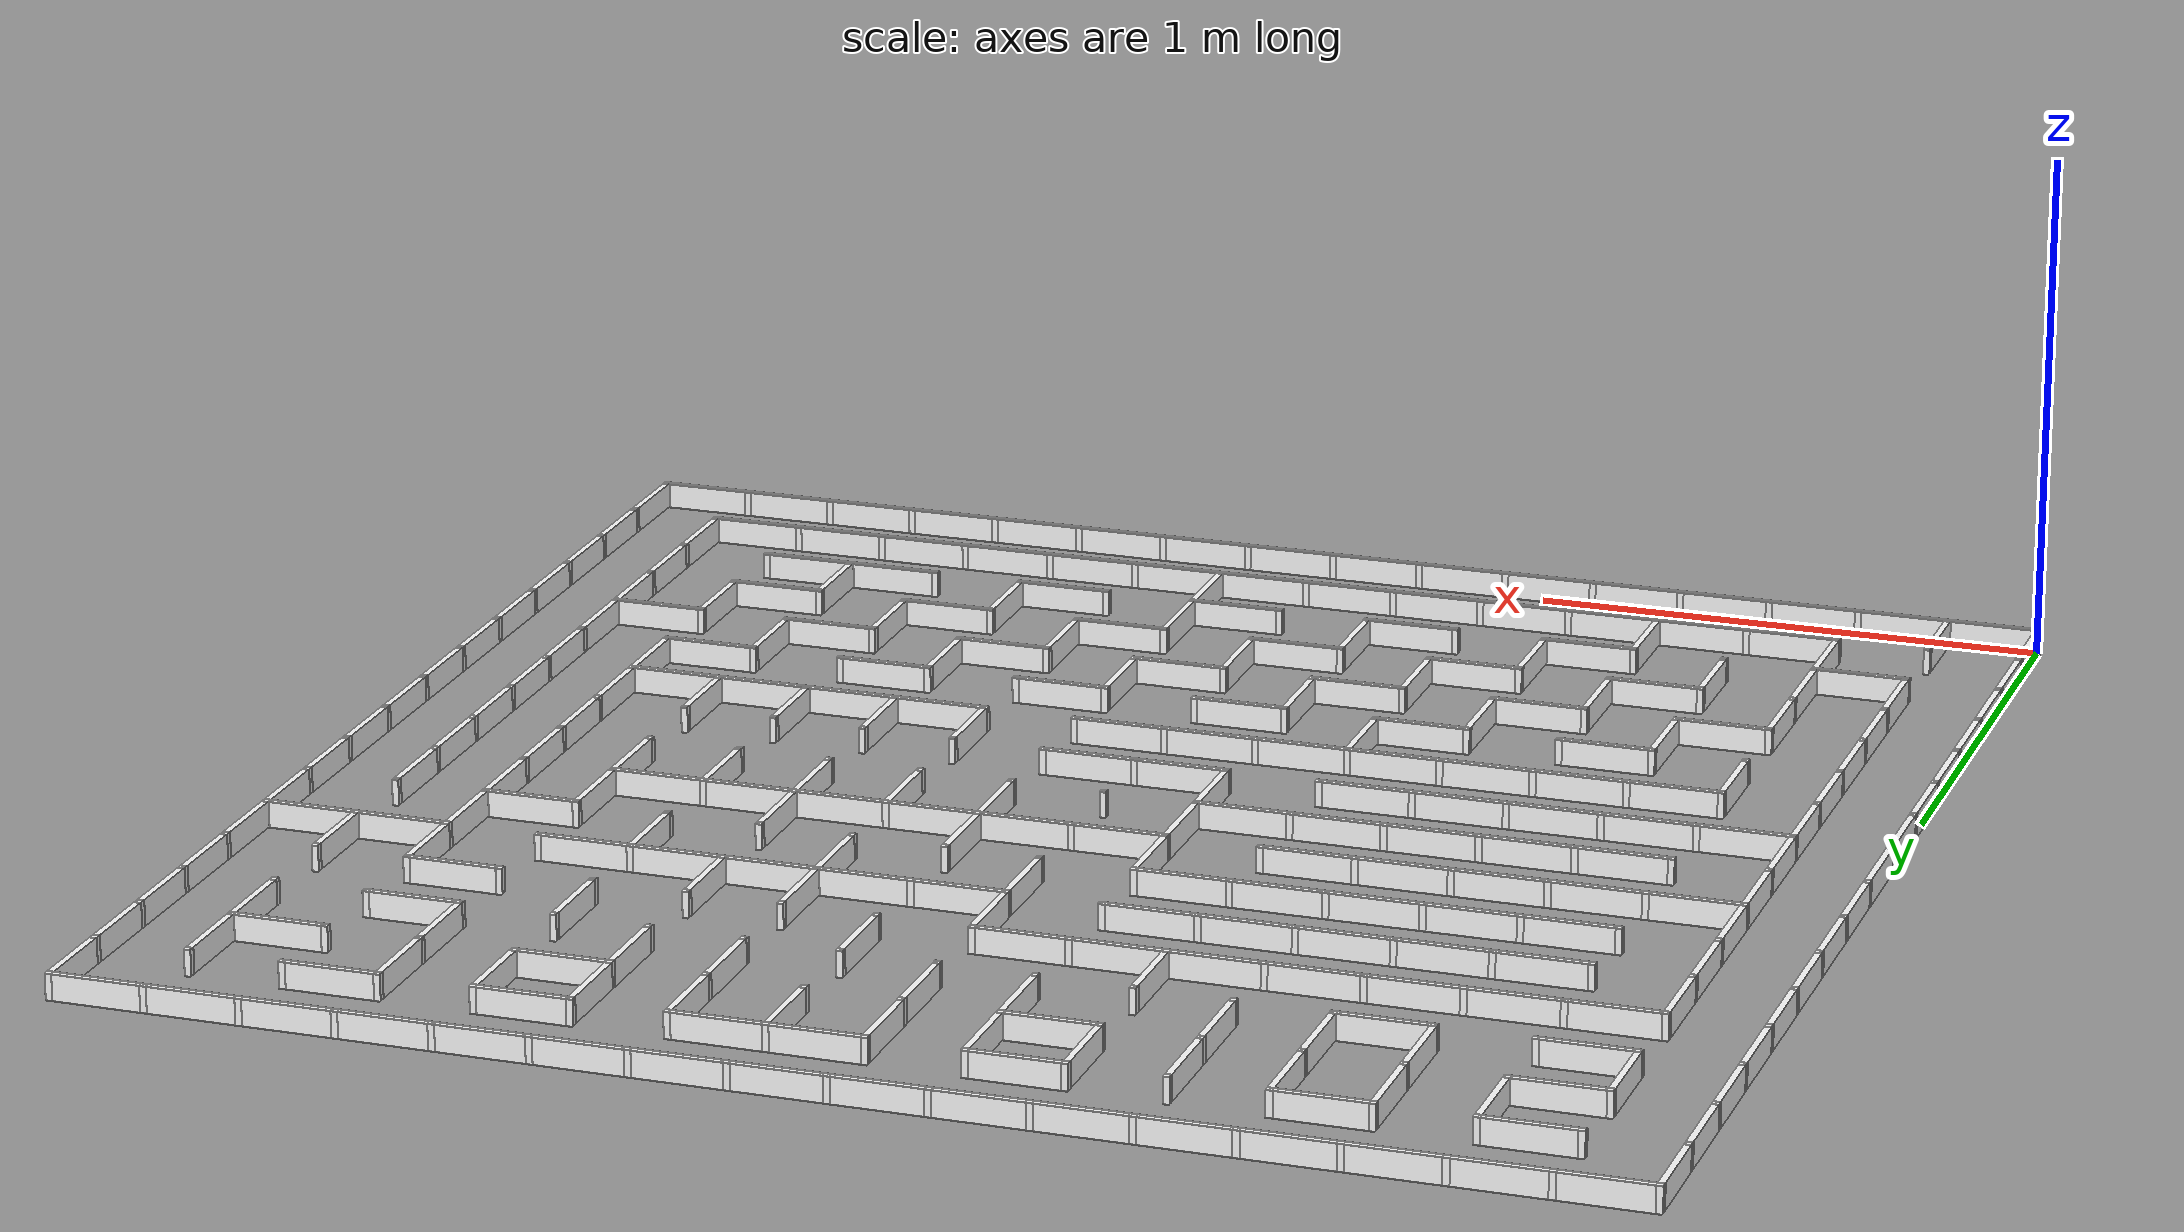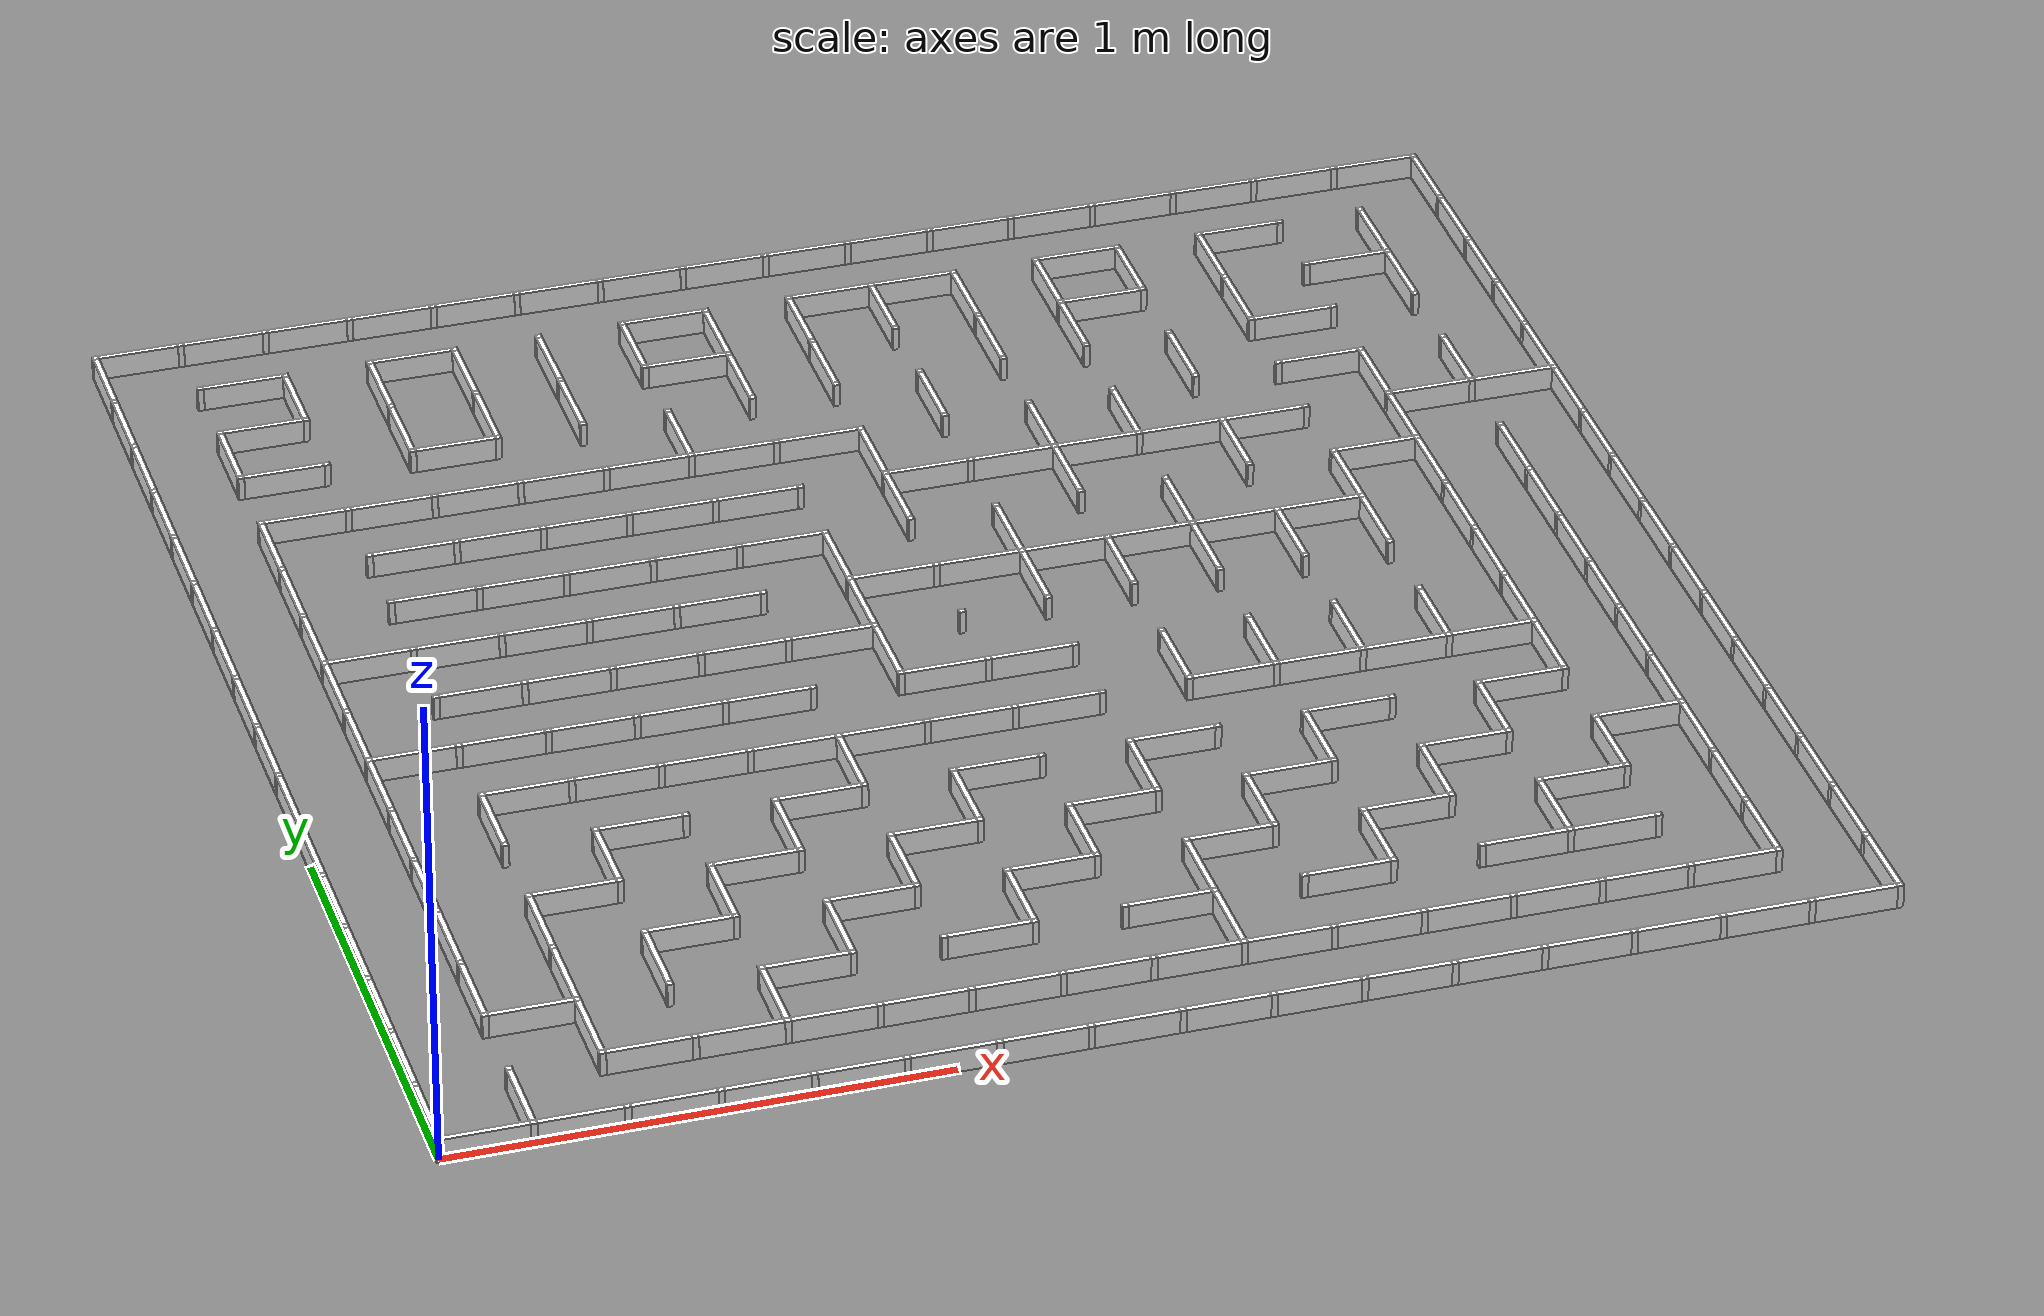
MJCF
<!-- Generated maze for MuJoCo -->
<!-- Maze dimensions: 16x16 -->
<!-- Cell size: 0.18 m, Wall thickness: 0.0126 m, Wall height: 0.05 m -->

<mujoco>
  <asset>
    <texture name="walls" type="cube" builtin="flat" width="512" height="512" rgb1="1 1 1" rgb2="1 0 0"/>
    <material name="walls" texture="walls"/>
  </asset>

  <default>
    <default class="post">
      <geom type="box" zaxis="0 1 0" material="walls" size="0.006300 0.025000 0.006300"/>
    </default>
    <default class="post_w">
      <geom type="box" zaxis="0 1 0" rgba="1 1 1 1" size="0.006300 0.025000 0.006300"/>
    </default>
    <default class="hwall">
      <geom type="box" zaxis="0 1 0" material="walls" size="0.083700 0.025000 0.006300"/>
    </default>
    <default class="hwall_w">
      <geom type="box" zaxis="0 1 0" rgba="1 1 1 1" size="0.083700 0.025000 0.006300"/>
    </default>
    <default class="vwall">
      <geom type="box" zaxis="0 1 0" material="walls" size="0.006300 0.025000 0.083700"/>
    </default>
    <default class="vwall_w">
      <geom type="box" zaxis="0 1 0" rgba="1 1 1 1" size="0.006300 0.025000 0.083700"/>
    </default>
  </default>

  <worldbody>
    <camera name="top_view" orthographic="true" fovy="3.5" pos="1.440000 1.440000 4.5" xyaxes="1.0 0.0 0.0 0.0 1.0 0.0"/>
    <geom class="post_w" name="post_0_0" pos="0.000000 0.000000 0.025000"/>
    <geom class="post_w" name="post_0_1" pos="0.180000 0.000000 0.025000"/>
    <geom class="post" name="post_0_2" pos="0.360000 0.000000 0.025000"/>
    <geom class="post" name="post_0_3" pos="0.540000 0.000000 0.025000"/>
    <geom class="post" name="post_0_4" pos="0.720000 0.000000 0.025000"/>
    <geom class="post" name="post_0_5" pos="0.900000 0.000000 0.025000"/>
    <geom class="post" name="post_0_6" pos="1.080000 0.000000 0.025000"/>
    <geom class="post" name="post_0_7" pos="1.260000 0.000000 0.025000"/>
    <geom class="post" name="post_0_8" pos="1.440000 0.000000 0.025000"/>
    <geom class="post" name="post_0_9" pos="1.620000 0.000000 0.025000"/>
    <geom class="post" name="post_0_10" pos="1.800000 0.000000 0.025000"/>
    <geom class="post" name="post_0_11" pos="1.980000 0.000000 0.025000"/>
    <geom class="post" name="post_0_12" pos="2.160000 0.000000 0.025000"/>
    <geom class="post" name="post_0_13" pos="2.340000 0.000000 0.025000"/>
    <geom class="post" name="post_0_14" pos="2.520000 0.000000 0.025000"/>
    <geom class="post" name="post_0_15" pos="2.700000 0.000000 0.025000"/>
    <geom class="post" name="post_0_16" pos="2.880000 0.000000 0.025000"/>
    <geom class="post_w" name="post_1_0" pos="0.000000 0.180000 0.025000"/>
    <geom class="post_w" name="post_1_1" pos="0.180000 0.180000 0.025000"/>
    <geom class="post" name="post_1_2" pos="0.360000 0.180000 0.025000"/>
    <geom class="post" name="post_1_3" pos="0.540000 0.180000 0.025000"/>
    <geom class="post" name="post_1_4" pos="0.720000 0.180000 0.025000"/>
    <geom class="post" name="post_1_5" pos="0.900000 0.180000 0.025000"/>
    <geom class="post" name="post_1_6" pos="1.080000 0.180000 0.025000"/>
    <geom class="post" name="post_1_7" pos="1.260000 0.180000 0.025000"/>
    <geom class="post" name="post_1_8" pos="1.440000 0.180000 0.025000"/>
    <geom class="post" name="post_1_9" pos="1.620000 0.180000 0.025000"/>
    <geom class="post" name="post_1_10" pos="1.800000 0.180000 0.025000"/>
    <geom class="post" name="post_1_11" pos="1.980000 0.180000 0.025000"/>
    <geom class="post" name="post_1_12" pos="2.160000 0.180000 0.025000"/>
    <geom class="post" name="post_1_13" pos="2.340000 0.180000 0.025000"/>
    <geom class="post" name="post_1_14" pos="2.520000 0.180000 0.025000"/>
    <geom class="post" name="post_1_15" pos="2.700000 0.180000 0.025000"/>
    <geom class="post" name="post_1_16" pos="2.880000 0.180000 0.025000"/>
    <geom class="post" name="post_2_0" pos="0.000000 0.360000 0.025000"/>
    <geom class="post" name="post_2_1" pos="0.180000 0.360000 0.025000"/>
    <geom class="post" name="post_2_2" pos="0.360000 0.360000 0.025000"/>
    <geom class="post" name="post_2_3" pos="0.540000 0.360000 0.025000"/>
    <geom class="post" name="post_2_4" pos="0.720000 0.360000 0.025000"/>
    <geom class="post" name="post_2_5" pos="0.900000 0.360000 0.025000"/>
    <geom class="post" name="post_2_6" pos="1.080000 0.360000 0.025000"/>
    <geom class="post" name="post_2_7" pos="1.260000 0.360000 0.025000"/>
    <geom class="post" name="post_2_8" pos="1.440000 0.360000 0.025000"/>
    <geom class="post" name="post_2_9" pos="1.620000 0.360000 0.025000"/>
    <geom class="post" name="post_2_10" pos="1.800000 0.360000 0.025000"/>
    <geom class="post" name="post_2_11" pos="1.980000 0.360000 0.025000"/>
    <geom class="post" name="post_2_12" pos="2.160000 0.360000 0.025000"/>
    <geom class="post" name="post_2_13" pos="2.340000 0.360000 0.025000"/>
    <geom class="post" name="post_2_14" pos="2.520000 0.360000 0.025000"/>
    <geom class="post" name="post_2_15" pos="2.700000 0.360000 0.025000"/>
    <geom class="post" name="post_2_16" pos="2.880000 0.360000 0.025000"/>
    <geom class="post" name="post_3_0" pos="0.000000 0.540000 0.025000"/>
    <geom class="post" name="post_3_1" pos="0.180000 0.540000 0.025000"/>
    <geom class="post" name="post_3_2" pos="0.360000 0.540000 0.025000"/>
    <geom class="post" name="post_3_3" pos="0.540000 0.540000 0.025000"/>
    <geom class="post" name="post_3_4" pos="0.720000 0.540000 0.025000"/>
    <geom class="post" name="post_3_5" pos="0.900000 0.540000 0.025000"/>
    <geom class="post" name="post_3_6" pos="1.080000 0.540000 0.025000"/>
    <geom class="post" name="post_3_7" pos="1.260000 0.540000 0.025000"/>
    <geom class="post" name="post_3_8" pos="1.440000 0.540000 0.025000"/>
    <geom class="post" name="post_3_9" pos="1.620000 0.540000 0.025000"/>
    <geom class="post" name="post_3_10" pos="1.800000 0.540000 0.025000"/>
    <geom class="post" name="post_3_11" pos="1.980000 0.540000 0.025000"/>
    <geom class="post" name="post_3_12" pos="2.160000 0.540000 0.025000"/>
    <geom class="post" name="post_3_13" pos="2.340000 0.540000 0.025000"/>
    <geom class="post" name="post_3_14" pos="2.520000 0.540000 0.025000"/>
    <geom class="post" name="post_3_15" pos="2.700000 0.540000 0.025000"/>
    <geom class="post" name="post_3_16" pos="2.880000 0.540000 0.025000"/>
    <geom class="post" name="post_4_0" pos="0.000000 0.720000 0.025000"/>
    <geom class="post" name="post_4_1" pos="0.180000 0.720000 0.025000"/>
    <geom class="post" name="post_4_2" pos="0.360000 0.720000 0.025000"/>
    <geom class="post" name="post_4_3" pos="0.540000 0.720000 0.025000"/>
    <geom class="post" name="post_4_4" pos="0.720000 0.720000 0.025000"/>
    <geom class="post" name="post_4_5" pos="0.900000 0.720000 0.025000"/>
    <geom class="post" name="post_4_6" pos="1.080000 0.720000 0.025000"/>
    <geom class="post" name="post_4_7" pos="1.260000 0.720000 0.025000"/>
    <geom class="post" name="post_4_8" pos="1.440000 0.720000 0.025000"/>
    <geom class="post" name="post_4_9" pos="1.620000 0.720000 0.025000"/>
    <geom class="post" name="post_4_10" pos="1.800000 0.720000 0.025000"/>
    <geom class="post" name="post_4_11" pos="1.980000 0.720000 0.025000"/>
    <geom class="post" name="post_4_12" pos="2.160000 0.720000 0.025000"/>
    <geom class="post" name="post_4_13" pos="2.340000 0.720000 0.025000"/>
    <geom class="post" name="post_4_14" pos="2.520000 0.720000 0.025000"/>
    <geom class="post" name="post_4_15" pos="2.700000 0.720000 0.025000"/>
    <geom class="post" name="post_4_16" pos="2.880000 0.720000 0.025000"/>
    <geom class="post" name="post_5_0" pos="0.000000 0.900000 0.025000"/>
    <geom class="post" name="post_5_1" pos="0.180000 0.900000 0.025000"/>
    <geom class="post" name="post_5_2" pos="0.360000 0.900000 0.025000"/>
    <geom class="post" name="post_5_3" pos="0.540000 0.900000 0.025000"/>
    <geom class="post" name="post_5_4" pos="0.720000 0.900000 0.025000"/>
    <geom class="post" name="post_5_5" pos="0.900000 0.900000 0.025000"/>
    <geom class="post" name="post_5_6" pos="1.080000 0.900000 0.025000"/>
    <geom class="post" name="post_5_7" pos="1.260000 0.900000 0.025000"/>
    <geom class="post" name="post_5_8" pos="1.440000 0.900000 0.025000"/>
    <geom class="post" name="post_5_9" pos="1.620000 0.900000 0.025000"/>
    <geom class="post" name="post_5_10" pos="1.800000 0.900000 0.025000"/>
    <geom class="post" name="post_5_11" pos="1.980000 0.900000 0.025000"/>
    <geom class="post" name="post_5_12" pos="2.160000 0.900000 0.025000"/>
    <geom class="post" name="post_5_13" pos="2.340000 0.900000 0.025000"/>
    <geom class="post" name="post_5_14" pos="2.520000 0.900000 0.025000"/>
    <geom class="post" name="post_5_15" pos="2.700000 0.900000 0.025000"/>
    <geom class="post" name="post_5_16" pos="2.880000 0.900000 0.025000"/>
    <geom class="post" name="post_6_0" pos="0.000000 1.080000 0.025000"/>
    <geom class="post" name="post_6_1" pos="0.180000 1.080000 0.025000"/>
    <geom class="post" name="post_6_2" pos="0.360000 1.080000 0.025000"/>
    <geom class="post" name="post_6_3" pos="0.540000 1.080000 0.025000"/>
    <geom class="post" name="post_6_4" pos="0.720000 1.080000 0.025000"/>
    <geom class="post" name="post_6_5" pos="0.900000 1.080000 0.025000"/>
    <geom class="post" name="post_6_6" pos="1.080000 1.080000 0.025000"/>
    <geom class="post" name="post_6_7" pos="1.260000 1.080000 0.025000"/>
    <geom class="post" name="post_6_8" pos="1.440000 1.080000 0.025000"/>
    <geom class="post" name="post_6_9" pos="1.620000 1.080000 0.025000"/>
    <geom class="post" name="post_6_10" pos="1.800000 1.080000 0.025000"/>
    <geom class="post" name="post_6_11" pos="1.980000 1.080000 0.025000"/>
    <geom class="post" name="post_6_12" pos="2.160000 1.080000 0.025000"/>
    <geom class="post" name="post_6_13" pos="2.340000 1.080000 0.025000"/>
    <geom class="post" name="post_6_14" pos="2.520000 1.080000 0.025000"/>
    <geom class="post" name="post_6_15" pos="2.700000 1.080000 0.025000"/>
    <geom class="post" name="post_6_16" pos="2.880000 1.080000 0.025000"/>
    <geom class="post" name="post_7_0" pos="0.000000 1.260000 0.025000"/>
    <geom class="post" name="post_7_1" pos="0.180000 1.260000 0.025000"/>
    <geom class="post" name="post_7_2" pos="0.360000 1.260000 0.025000"/>
    <geom class="post" name="post_7_3" pos="0.540000 1.260000 0.025000"/>
    <geom class="post" name="post_7_4" pos="0.720000 1.260000 0.025000"/>
    <geom class="post" name="post_7_5" pos="0.900000 1.260000 0.025000"/>
    <geom class="post" name="post_7_6" pos="1.080000 1.260000 0.025000"/>
    <geom class="post_w" name="post_7_7" pos="1.260000 1.260000 0.025000"/>
    <geom class="post_w" name="post_7_8" pos="1.440000 1.260000 0.025000"/>
    <geom class="post_w" name="post_7_9" pos="1.620000 1.260000 0.025000"/>
    <geom class="post" name="post_7_10" pos="1.800000 1.260000 0.025000"/>
    <geom class="post" name="post_7_11" pos="1.980000 1.260000 0.025000"/>
    <geom class="post" name="post_7_12" pos="2.160000 1.260000 0.025000"/>
    <geom class="post" name="post_7_13" pos="2.340000 1.260000 0.025000"/>
    <geom class="post" name="post_7_14" pos="2.520000 1.260000 0.025000"/>
    <geom class="post" name="post_7_15" pos="2.700000 1.260000 0.025000"/>
    <geom class="post" name="post_7_16" pos="2.880000 1.260000 0.025000"/>
    <geom class="post" name="post_8_0" pos="0.000000 1.440000 0.025000"/>
    <geom class="post" name="post_8_1" pos="0.180000 1.440000 0.025000"/>
    <geom class="post" name="post_8_2" pos="0.360000 1.440000 0.025000"/>
    <geom class="post" name="post_8_3" pos="0.540000 1.440000 0.025000"/>
    <geom class="post" name="post_8_4" pos="0.720000 1.440000 0.025000"/>
    <geom class="post" name="post_8_5" pos="0.900000 1.440000 0.025000"/>
    <geom class="post" name="post_8_6" pos="1.080000 1.440000 0.025000"/>
    <geom class="post_w" name="post_8_7" pos="1.260000 1.440000 0.025000"/>
    <geom class="post_w" name="post_8_8" pos="1.440000 1.440000 0.025000"/>
    <geom class="post_w" name="post_8_9" pos="1.620000 1.440000 0.025000"/>
    <geom class="post" name="post_8_10" pos="1.800000 1.440000 0.025000"/>
    <geom class="post" name="post_8_11" pos="1.980000 1.440000 0.025000"/>
    <geom class="post" name="post_8_12" pos="2.160000 1.440000 0.025000"/>
    <geom class="post" name="post_8_13" pos="2.340000 1.440000 0.025000"/>
    <geom class="post" name="post_8_14" pos="2.520000 1.440000 0.025000"/>
    <geom class="post" name="post_8_15" pos="2.700000 1.440000 0.025000"/>
    <geom class="post" name="post_8_16" pos="2.880000 1.440000 0.025000"/>
    <geom class="post" name="post_9_0" pos="0.000000 1.620000 0.025000"/>
    <geom class="post" name="post_9_1" pos="0.180000 1.620000 0.025000"/>
    <geom class="post" name="post_9_2" pos="0.360000 1.620000 0.025000"/>
    <geom class="post" name="post_9_3" pos="0.540000 1.620000 0.025000"/>
    <geom class="post" name="post_9_4" pos="0.720000 1.620000 0.025000"/>
    <geom class="post" name="post_9_5" pos="0.900000 1.620000 0.025000"/>
    <geom class="post" name="post_9_6" pos="1.080000 1.620000 0.025000"/>
    <geom class="post_w" name="post_9_7" pos="1.260000 1.620000 0.025000"/>
    <geom class="post_w" name="post_9_8" pos="1.440000 1.620000 0.025000"/>
    <geom class="post_w" name="post_9_9" pos="1.620000 1.620000 0.025000"/>
    <geom class="post" name="post_9_10" pos="1.800000 1.620000 0.025000"/>
    <geom class="post" name="post_9_11" pos="1.980000 1.620000 0.025000"/>
    <geom class="post" name="post_9_12" pos="2.160000 1.620000 0.025000"/>
    <geom class="post" name="post_9_13" pos="2.340000 1.620000 0.025000"/>
    <geom class="post" name="post_9_14" pos="2.520000 1.620000 0.025000"/>
    <geom class="post" name="post_9_15" pos="2.700000 1.620000 0.025000"/>
    <geom class="post" name="post_9_16" pos="2.880000 1.620000 0.025000"/>
    <geom class="post" name="post_10_0" pos="0.000000 1.800000 0.025000"/>
    <geom class="post" name="post_10_1" pos="0.180000 1.800000 0.025000"/>
    <geom class="post" name="post_10_2" pos="0.360000 1.800000 0.025000"/>
    <geom class="post" name="post_10_3" pos="0.540000 1.800000 0.025000"/>
    <geom class="post" name="post_10_4" pos="0.720000 1.800000 0.025000"/>
    <geom class="post" name="post_10_5" pos="0.900000 1.800000 0.025000"/>
    <geom class="post" name="post_10_6" pos="1.080000 1.800000 0.025000"/>
    <geom class="post" name="post_10_7" pos="1.260000 1.800000 0.025000"/>
    <geom class="post" name="post_10_8" pos="1.440000 1.800000 0.025000"/>
    <geom class="post" name="post_10_9" pos="1.620000 1.800000 0.025000"/>
    <geom class="post" name="post_10_10" pos="1.800000 1.800000 0.025000"/>
    <geom class="post" name="post_10_11" pos="1.980000 1.800000 0.025000"/>
    <geom class="post" name="post_10_12" pos="2.160000 1.800000 0.025000"/>
    <geom class="post" name="post_10_13" pos="2.340000 1.800000 0.025000"/>
    <geom class="post" name="post_10_14" pos="2.520000 1.800000 0.025000"/>
    <geom class="post" name="post_10_15" pos="2.700000 1.800000 0.025000"/>
    <geom class="post" name="post_10_16" pos="2.880000 1.800000 0.025000"/>
    <geom class="post" name="post_11_0" pos="0.000000 1.980000 0.025000"/>
    <geom class="post" name="post_11_1" pos="0.180000 1.980000 0.025000"/>
    <geom class="post" name="post_11_2" pos="0.360000 1.980000 0.025000"/>
    <geom class="post" name="post_11_3" pos="0.540000 1.980000 0.025000"/>
    <geom class="post" name="post_11_4" pos="0.720000 1.980000 0.025000"/>
    <geom class="post" name="post_11_5" pos="0.900000 1.980000 0.025000"/>
    <geom class="post" name="post_11_6" pos="1.080000 1.980000 0.025000"/>
    <geom class="post" name="post_11_7" pos="1.260000 1.980000 0.025000"/>
    <geom class="post" name="post_11_8" pos="1.440000 1.980000 0.025000"/>
    <geom class="post" name="post_11_9" pos="1.620000 1.980000 0.025000"/>
    <geom class="post" name="post_11_10" pos="1.800000 1.980000 0.025000"/>
    <geom class="post" name="post_11_11" pos="1.980000 1.980000 0.025000"/>
    <geom class="post" name="post_11_12" pos="2.160000 1.980000 0.025000"/>
    <geom class="post" name="post_11_13" pos="2.340000 1.980000 0.025000"/>
    <geom class="post" name="post_11_14" pos="2.520000 1.980000 0.025000"/>
    <geom class="post" name="post_11_15" pos="2.700000 1.980000 0.025000"/>
    <geom class="post" name="post_11_16" pos="2.880000 1.980000 0.025000"/>
    <geom class="post" name="post_12_0" pos="0.000000 2.160000 0.025000"/>
    <geom class="post" name="post_12_1" pos="0.180000 2.160000 0.025000"/>
    <geom class="post" name="post_12_2" pos="0.360000 2.160000 0.025000"/>
    <geom class="post" name="post_12_3" pos="0.540000 2.160000 0.025000"/>
    <geom class="post" name="post_12_4" pos="0.720000 2.160000 0.025000"/>
    <geom class="post" name="post_12_5" pos="0.900000 2.160000 0.025000"/>
    <geom class="post" name="post_12_6" pos="1.080000 2.160000 0.025000"/>
    <geom class="post" name="post_12_7" pos="1.260000 2.160000 0.025000"/>
    <geom class="post" name="post_12_8" pos="1.440000 2.160000 0.025000"/>
    <geom class="post" name="post_12_9" pos="1.620000 2.160000 0.025000"/>
    <geom class="post" name="post_12_10" pos="1.800000 2.160000 0.025000"/>
    <geom class="post" name="post_12_11" pos="1.980000 2.160000 0.025000"/>
    <geom class="post" name="post_12_12" pos="2.160000 2.160000 0.025000"/>
    <geom class="post" name="post_12_13" pos="2.340000 2.160000 0.025000"/>
    <geom class="post" name="post_12_14" pos="2.520000 2.160000 0.025000"/>
    <geom class="post" name="post_12_15" pos="2.700000 2.160000 0.025000"/>
    <geom class="post" name="post_12_16" pos="2.880000 2.160000 0.025000"/>
    <geom class="post" name="post_13_0" pos="0.000000 2.340000 0.025000"/>
    <geom class="post" name="post_13_1" pos="0.180000 2.340000 0.025000"/>
    <geom class="post" name="post_13_2" pos="0.360000 2.340000 0.025000"/>
    <geom class="post" name="post_13_3" pos="0.540000 2.340000 0.025000"/>
    <geom class="post" name="post_13_4" pos="0.720000 2.340000 0.025000"/>
    <geom class="post" name="post_13_5" pos="0.900000 2.340000 0.025000"/>
    <geom class="post" name="post_13_6" pos="1.080000 2.340000 0.025000"/>
    <geom class="post" name="post_13_7" pos="1.260000 2.340000 0.025000"/>
    <geom class="post" name="post_13_8" pos="1.440000 2.340000 0.025000"/>
    <geom class="post" name="post_13_9" pos="1.620000 2.340000 0.025000"/>
    <geom class="post" name="post_13_10" pos="1.800000 2.340000 0.025000"/>
    <geom class="post" name="post_13_11" pos="1.980000 2.340000 0.025000"/>
    <geom class="post" name="post_13_12" pos="2.160000 2.340000 0.025000"/>
    <geom class="post" name="post_13_13" pos="2.340000 2.340000 0.025000"/>
    <geom class="post" name="post_13_14" pos="2.520000 2.340000 0.025000"/>
    <geom class="post" name="post_13_15" pos="2.700000 2.340000 0.025000"/>
    <geom class="post" name="post_13_16" pos="2.880000 2.340000 0.025000"/>
    <geom class="post" name="post_14_0" pos="0.000000 2.520000 0.025000"/>
    <geom class="post" name="post_14_1" pos="0.180000 2.520000 0.025000"/>
    <geom class="post" name="post_14_2" pos="0.360000 2.520000 0.025000"/>
    <geom class="post" name="post_14_3" pos="0.540000 2.520000 0.025000"/>
    <geom class="post" name="post_14_4" pos="0.720000 2.520000 0.025000"/>
    <geom class="post" name="post_14_5" pos="0.900000 2.520000 0.025000"/>
    <geom class="post" name="post_14_6" pos="1.080000 2.520000 0.025000"/>
    <geom class="post" name="post_14_7" pos="1.260000 2.520000 0.025000"/>
    <geom class="post" name="post_14_8" pos="1.440000 2.520000 0.025000"/>
    <geom class="post" name="post_14_9" pos="1.620000 2.520000 0.025000"/>
    <geom class="post" name="post_14_10" pos="1.800000 2.520000 0.025000"/>
    <geom class="post" name="post_14_11" pos="1.980000 2.520000 0.025000"/>
    <geom class="post" name="post_14_12" pos="2.160000 2.520000 0.025000"/>
    <geom class="post" name="post_14_13" pos="2.340000 2.520000 0.025000"/>
    <geom class="post" name="post_14_14" pos="2.520000 2.520000 0.025000"/>
    <geom class="post" name="post_14_15" pos="2.700000 2.520000 0.025000"/>
    <geom class="post" name="post_14_16" pos="2.880000 2.520000 0.025000"/>
    <geom class="post" name="post_15_0" pos="0.000000 2.700000 0.025000"/>
    <geom class="post" name="post_15_1" pos="0.180000 2.700000 0.025000"/>
    <geom class="post" name="post_15_2" pos="0.360000 2.700000 0.025000"/>
    <geom class="post" name="post_15_3" pos="0.540000 2.700000 0.025000"/>
    <geom class="post" name="post_15_4" pos="0.720000 2.700000 0.025000"/>
    <geom class="post" name="post_15_5" pos="0.900000 2.700000 0.025000"/>
    <geom class="post" name="post_15_6" pos="1.080000 2.700000 0.025000"/>
    <geom class="post" name="post_15_7" pos="1.260000 2.700000 0.025000"/>
    <geom class="post" name="post_15_8" pos="1.440000 2.700000 0.025000"/>
    <geom class="post" name="post_15_9" pos="1.620000 2.700000 0.025000"/>
    <geom class="post" name="post_15_10" pos="1.800000 2.700000 0.025000"/>
    <geom class="post" name="post_15_11" pos="1.980000 2.700000 0.025000"/>
    <geom class="post" name="post_15_12" pos="2.160000 2.700000 0.025000"/>
    <geom class="post" name="post_15_13" pos="2.340000 2.700000 0.025000"/>
    <geom class="post" name="post_15_14" pos="2.520000 2.700000 0.025000"/>
    <geom class="post" name="post_15_15" pos="2.700000 2.700000 0.025000"/>
    <geom class="post" name="post_15_16" pos="2.880000 2.700000 0.025000"/>
    <geom class="post" name="post_16_0" pos="0.000000 2.880000 0.025000"/>
    <geom class="post" name="post_16_1" pos="0.180000 2.880000 0.025000"/>
    <geom class="post" name="post_16_2" pos="0.360000 2.880000 0.025000"/>
    <geom class="post" name="post_16_3" pos="0.540000 2.880000 0.025000"/>
    <geom class="post" name="post_16_4" pos="0.720000 2.880000 0.025000"/>
    <geom class="post" name="post_16_5" pos="0.900000 2.880000 0.025000"/>
    <geom class="post" name="post_16_6" pos="1.080000 2.880000 0.025000"/>
    <geom class="post" name="post_16_7" pos="1.260000 2.880000 0.025000"/>
    <geom class="post" name="post_16_8" pos="1.440000 2.880000 0.025000"/>
    <geom class="post" name="post_16_9" pos="1.620000 2.880000 0.025000"/>
    <geom class="post" name="post_16_10" pos="1.800000 2.880000 0.025000"/>
    <geom class="post" name="post_16_11" pos="1.980000 2.880000 0.025000"/>
    <geom class="post" name="post_16_12" pos="2.160000 2.880000 0.025000"/>
    <geom class="post" name="post_16_13" pos="2.340000 2.880000 0.025000"/>
    <geom class="post" name="post_16_14" pos="2.520000 2.880000 0.025000"/>
    <geom class="post" name="post_16_15" pos="2.700000 2.880000 0.025000"/>
    <geom class="post" name="post_16_16" pos="2.880000 2.880000 0.025000"/>
    <geom class="hwall_w" name="hwall_0_0" pos="0.090000 0.000000 0.025000"/>
    <geom class="hwall" name="hwall_0_1" pos="0.270000 0.000000 0.025000"/>
    <geom class="hwall" name="hwall_0_2" pos="0.450000 0.000000 0.025000"/>
    <geom class="hwall" name="hwall_0_3" pos="0.630000 0.000000 0.025000"/>
    <geom class="hwall" name="hwall_0_4" pos="0.810000 0.000000 0.025000"/>
    <geom class="hwall" name="hwall_0_5" pos="0.990000 0.000000 0.025000"/>
    <geom class="hwall" name="hwall_0_6" pos="1.170000 0.000000 0.025000"/>
    <geom class="hwall" name="hwall_0_7" pos="1.350000 0.000000 0.025000"/>
    <geom class="hwall" name="hwall_0_8" pos="1.530000 0.000000 0.025000"/>
    <geom class="hwall" name="hwall_0_9" pos="1.710000 0.000000 0.025000"/>
    <geom class="hwall" name="hwall_0_10" pos="1.890000 0.000000 0.025000"/>
    <geom class="hwall" name="hwall_0_11" pos="2.070000 0.000000 0.025000"/>
    <geom class="hwall" name="hwall_0_12" pos="2.250000 0.000000 0.025000"/>
    <geom class="hwall" name="hwall_0_13" pos="2.430000 0.000000 0.025000"/>
    <geom class="hwall" name="hwall_0_14" pos="2.610000 0.000000 0.025000"/>
    <geom class="hwall" name="hwall_0_15" pos="2.790000 0.000000 0.025000"/>
    <geom class="hwall" name="hwall_1_2" pos="0.450000 0.180000 0.025000"/>
    <geom class="hwall" name="hwall_1_3" pos="0.630000 0.180000 0.025000"/>
    <geom class="hwall" name="hwall_1_4" pos="0.810000 0.180000 0.025000"/>
    <geom class="hwall" name="hwall_1_5" pos="0.990000 0.180000 0.025000"/>
    <geom class="hwall" name="hwall_1_6" pos="1.170000 0.180000 0.025000"/>
    <geom class="hwall" name="hwall_1_7" pos="1.350000 0.180000 0.025000"/>
    <geom class="hwall" name="hwall_1_8" pos="1.530000 0.180000 0.025000"/>
    <geom class="hwall" name="hwall_1_9" pos="1.710000 0.180000 0.025000"/>
    <geom class="hwall" name="hwall_1_10" pos="1.890000 0.180000 0.025000"/>
    <geom class="hwall" name="hwall_1_11" pos="2.070000 0.180000 0.025000"/>
    <geom class="hwall" name="hwall_1_12" pos="2.250000 0.180000 0.025000"/>
    <geom class="hwall" name="hwall_1_13" pos="2.430000 0.180000 0.025000"/>
    <geom class="hwall" name="hwall_1_14" pos="2.610000 0.180000 0.025000"/>
    <geom class="hwall" name="hwall_2_1" pos="0.270000 0.360000 0.025000"/>
    <geom class="hwall" name="hwall_2_4" pos="0.810000 0.360000 0.025000"/>
    <geom class="hwall" name="hwall_2_6" pos="1.170000 0.360000 0.025000"/>
    <geom class="hwall" name="hwall_2_8" pos="1.530000 0.360000 0.025000"/>
    <geom class="hwall" name="hwall_2_10" pos="1.890000 0.360000 0.025000"/>
    <geom class="hwall" name="hwall_2_12" pos="2.250000 0.360000 0.025000"/>
    <geom class="hwall" name="hwall_2_13" pos="2.430000 0.360000 0.025000"/>
    <geom class="hwall" name="hwall_3_3" pos="0.630000 0.540000 0.025000"/>
    <geom class="hwall" name="hwall_3_5" pos="0.990000 0.540000 0.025000"/>
    <geom class="hwall" name="hwall_3_7" pos="1.350000 0.540000 0.025000"/>
    <geom class="hwall" name="hwall_3_9" pos="1.710000 0.540000 0.025000"/>
    <geom class="hwall" name="hwall_3_11" pos="2.070000 0.540000 0.025000"/>
    <geom class="hwall" name="hwall_3_13" pos="2.430000 0.540000 0.025000"/>
    <geom class="hwall" name="hwall_4_2" pos="0.450000 0.720000 0.025000"/>
    <geom class="hwall" name="hwall_4_4" pos="0.810000 0.720000 0.025000"/>
    <geom class="hwall" name="hwall_4_6" pos="1.170000 0.720000 0.025000"/>
    <geom class="hwall" name="hwall_4_8" pos="1.530000 0.720000 0.025000"/>
    <geom class="hwall" name="hwall_4_10" pos="1.890000 0.720000 0.025000"/>
    <geom class="hwall" name="hwall_4_12" pos="2.250000 0.720000 0.025000"/>
    <geom class="hwall" name="hwall_4_14" pos="2.610000 0.720000 0.025000"/>
    <geom class="hwall" name="hwall_5_3" pos="0.630000 0.900000 0.025000"/>
    <geom class="hwall" name="hwall_5_5" pos="0.990000 0.900000 0.025000"/>
    <geom class="hwall" name="hwall_5_7" pos="1.350000 0.900000 0.025000"/>
    <geom class="hwall" name="hwall_5_9" pos="1.710000 0.900000 0.025000"/>
    <geom class="hwall" name="hwall_5_11" pos="2.070000 0.900000 0.025000"/>
    <geom class="hwall" name="hwall_5_13" pos="2.430000 0.900000 0.025000"/>
    <geom class="hwall" name="hwall_6_2" pos="0.450000 1.080000 0.025000"/>
    <geom class="hwall" name="hwall_6_3" pos="0.630000 1.080000 0.025000"/>
    <geom class="hwall" name="hwall_6_4" pos="0.810000 1.080000 0.025000"/>
    <geom class="hwall" name="hwall_6_5" pos="0.990000 1.080000 0.025000"/>
    <geom class="hwall" name="hwall_6_6" pos="1.170000 1.080000 0.025000"/>
    <geom class="hwall" name="hwall_6_7" pos="1.350000 1.080000 0.025000"/>
    <geom class="hwall" name="hwall_6_8" pos="1.530000 1.080000 0.025000"/>
    <geom class="hwall" name="hwall_6_10" pos="1.890000 1.080000 0.025000"/>
    <geom class="hwall" name="hwall_6_11" pos="2.070000 1.080000 0.025000"/>
    <geom class="hwall" name="hwall_6_12" pos="2.250000 1.080000 0.025000"/>
    <geom class="hwall" name="hwall_6_13" pos="2.430000 1.080000 0.025000"/>
    <geom class="hwall" name="hwall_7_1" pos="0.270000 1.260000 0.025000"/>
    <geom class="hwall" name="hwall_7_2" pos="0.450000 1.260000 0.025000"/>
    <geom class="hwall" name="hwall_7_3" pos="0.630000 1.260000 0.025000"/>
    <geom class="hwall" name="hwall_7_4" pos="0.810000 1.260000 0.025000"/>
    <geom class="hwall" name="hwall_7_5" pos="0.990000 1.260000 0.025000"/>
    <geom class="hwall_w" name="hwall_7_7" pos="1.350000 1.260000 0.025000"/>
    <geom class="hwall_w" name="hwall_7_8" pos="1.530000 1.260000 0.025000"/>
    <geom class="hwall" name="hwall_8_2" pos="0.450000 1.440000 0.025000"/>
    <geom class="hwall" name="hwall_8_3" pos="0.630000 1.440000 0.025000"/>
    <geom class="hwall" name="hwall_8_4" pos="0.810000 1.440000 0.025000"/>
    <geom class="hwall" name="hwall_8_5" pos="0.990000 1.440000 0.025000"/>
    <geom class="hwall" name="hwall_8_6" pos="1.170000 1.440000 0.025000"/>
    <geom class="hwall" name="hwall_9_1" pos="0.270000 1.620000 0.025000"/>
    <geom class="hwall" name="hwall_9_2" pos="0.450000 1.620000 0.025000"/>
    <geom class="hwall" name="hwall_9_3" pos="0.630000 1.620000 0.025000"/>
    <geom class="hwall" name="hwall_9_4" pos="0.810000 1.620000 0.025000"/>
    <geom class="hwall" name="hwall_9_5" pos="0.990000 1.620000 0.025000"/>
    <geom class="hwall_w" name="hwall_9_7" pos="1.350000 1.620000 0.025000"/>
    <geom class="hwall_w" name="hwall_9_8" pos="1.530000 1.620000 0.025000"/>
    <geom class="hwall" name="hwall_9_9" pos="1.710000 1.620000 0.025000"/>
    <geom class="hwall" name="hwall_9_10" pos="1.890000 1.620000 0.025000"/>
    <geom class="hwall" name="hwall_9_11" pos="2.070000 1.620000 0.025000"/>
    <geom class="hwall" name="hwall_9_12" pos="2.250000 1.620000 0.025000"/>
    <geom class="hwall" name="hwall_10_2" pos="0.450000 1.800000 0.025000"/>
    <geom class="hwall" name="hwall_10_3" pos="0.630000 1.800000 0.025000"/>
    <geom class="hwall" name="hwall_10_4" pos="0.810000 1.800000 0.025000"/>
    <geom class="hwall" name="hwall_10_5" pos="0.990000 1.800000 0.025000"/>
    <geom class="hwall" name="hwall_10_6" pos="1.170000 1.800000 0.025000"/>
    <geom class="hwall" name="hwall_10_13" pos="2.430000 1.800000 0.025000"/>
    <geom class="hwall" name="hwall_11_2" pos="0.450000 1.980000 0.025000"/>
    <geom class="hwall" name="hwall_11_3" pos="0.630000 1.980000 0.025000"/>
    <geom class="hwall" name="hwall_11_4" pos="0.810000 1.980000 0.025000"/>
    <geom class="hwall" name="hwall_11_5" pos="0.990000 1.980000 0.025000"/>
    <geom class="hwall" name="hwall_11_6" pos="1.170000 1.980000 0.025000"/>
    <geom class="hwall" name="hwall_11_8" pos="1.530000 1.980000 0.025000"/>
    <geom class="hwall" name="hwall_11_9" pos="1.710000 1.980000 0.025000"/>
    <geom class="hwall" name="hwall_11_10" pos="1.890000 1.980000 0.025000"/>
    <geom class="hwall" name="hwall_11_11" pos="2.070000 1.980000 0.025000"/>
    <geom class="hwall" name="hwall_11_12" pos="2.250000 1.980000 0.025000"/>
    <geom class="hwall" name="hwall_11_14" pos="2.610000 1.980000 0.025000"/>
    <geom class="hwall" name="hwall_11_15" pos="2.790000 1.980000 0.025000"/>
    <geom class="hwall" name="hwall_12_1" pos="0.270000 2.160000 0.025000"/>
    <geom class="hwall" name="hwall_12_2" pos="0.450000 2.160000 0.025000"/>
    <geom class="hwall" name="hwall_12_3" pos="0.630000 2.160000 0.025000"/>
    <geom class="hwall" name="hwall_12_4" pos="0.810000 2.160000 0.025000"/>
    <geom class="hwall" name="hwall_12_5" pos="0.990000 2.160000 0.025000"/>
    <geom class="hwall" name="hwall_12_6" pos="1.170000 2.160000 0.025000"/>
    <geom class="hwall" name="hwall_12_7" pos="1.350000 2.160000 0.025000"/>
    <geom class="hwall" name="hwall_12_13" pos="2.430000 2.160000 0.025000"/>
    <geom class="hwall" name="hwall_13_1" pos="0.270000 2.340000 0.025000"/>
    <geom class="hwall" name="hwall_13_3" pos="0.630000 2.340000 0.025000"/>
    <geom class="hwall" name="hwall_13_13" pos="2.430000 2.340000 0.025000"/>
    <geom class="hwall" name="hwall_14_1" pos="0.270000 2.520000 0.025000"/>
    <geom class="hwall" name="hwall_14_6" pos="1.170000 2.520000 0.025000"/>
    <geom class="hwall" name="hwall_14_11" pos="2.070000 2.520000 0.025000"/>
    <geom class="hwall" name="hwall_14_14" pos="2.610000 2.520000 0.025000"/>
    <geom class="hwall" name="hwall_15_1" pos="0.270000 2.700000 0.025000"/>
    <geom class="hwall" name="hwall_15_3" pos="0.630000 2.700000 0.025000"/>
    <geom class="hwall" name="hwall_15_6" pos="1.170000 2.700000 0.025000"/>
    <geom class="hwall" name="hwall_15_8" pos="1.530000 2.700000 0.025000"/>
    <geom class="hwall" name="hwall_15_9" pos="1.710000 2.700000 0.025000"/>
    <geom class="hwall" name="hwall_15_11" pos="2.070000 2.700000 0.025000"/>
    <geom class="hwall" name="hwall_15_13" pos="2.430000 2.700000 0.025000"/>
    <geom class="hwall" name="hwall_16_0" pos="0.090000 2.880000 0.025000"/>
    <geom class="hwall" name="hwall_16_1" pos="0.270000 2.880000 0.025000"/>
    <geom class="hwall" name="hwall_16_2" pos="0.450000 2.880000 0.025000"/>
    <geom class="hwall" name="hwall_16_3" pos="0.630000 2.880000 0.025000"/>
    <geom class="hwall" name="hwall_16_4" pos="0.810000 2.880000 0.025000"/>
    <geom class="hwall" name="hwall_16_5" pos="0.990000 2.880000 0.025000"/>
    <geom class="hwall" name="hwall_16_6" pos="1.170000 2.880000 0.025000"/>
    <geom class="hwall" name="hwall_16_7" pos="1.350000 2.880000 0.025000"/>
    <geom class="hwall" name="hwall_16_8" pos="1.530000 2.880000 0.025000"/>
    <geom class="hwall" name="hwall_16_9" pos="1.710000 2.880000 0.025000"/>
    <geom class="hwall" name="hwall_16_10" pos="1.890000 2.880000 0.025000"/>
    <geom class="hwall" name="hwall_16_11" pos="2.070000 2.880000 0.025000"/>
    <geom class="hwall" name="hwall_16_12" pos="2.250000 2.880000 0.025000"/>
    <geom class="hwall" name="hwall_16_13" pos="2.430000 2.880000 0.025000"/>
    <geom class="hwall" name="hwall_16_14" pos="2.610000 2.880000 0.025000"/>
    <geom class="hwall" name="hwall_16_15" pos="2.790000 2.880000 0.025000"/>
    <geom class="vwall_w" name="vwall_0_0" pos="0.000000 0.090000 0.025000"/>
    <geom class="vwall_w" name="vwall_0_1" pos="0.180000 0.090000 0.025000"/>
    <geom class="vwall" name="vwall_0_16" pos="2.880000 0.090000 0.025000"/>
    <geom class="vwall" name="vwall_1_0" pos="0.000000 0.270000 0.025000"/>
    <geom class="vwall" name="vwall_1_2" pos="0.360000 0.270000 0.025000"/>
    <geom class="vwall" name="vwall_1_4" pos="0.720000 0.270000 0.025000"/>
    <geom class="vwall" name="vwall_1_9" pos="1.620000 0.270000 0.025000"/>
    <geom class="vwall" name="vwall_1_15" pos="2.700000 0.270000 0.025000"/>
    <geom class="vwall" name="vwall_1_16" pos="2.880000 0.270000 0.025000"/>
    <geom class="vwall" name="vwall_2_0" pos="0.000000 0.450000 0.025000"/>
    <geom class="vwall" name="vwall_2_1" pos="0.180000 0.450000 0.025000"/>
    <geom class="vwall" name="vwall_2_2" pos="0.360000 0.450000 0.025000"/>
    <geom class="vwall" name="vwall_2_3" pos="0.540000 0.450000 0.025000"/>
    <geom class="vwall" name="vwall_2_5" pos="0.900000 0.450000 0.025000"/>
    <geom class="vwall" name="vwall_2_7" pos="1.260000 0.450000 0.025000"/>
    <geom class="vwall" name="vwall_2_9" pos="1.620000 0.450000 0.025000"/>
    <geom class="vwall" name="vwall_2_11" pos="1.980000 0.450000 0.025000"/>
    <geom class="vwall" name="vwall_2_13" pos="2.340000 0.450000 0.025000"/>
    <geom class="vwall" name="vwall_2_15" pos="2.700000 0.450000 0.025000"/>
    <geom class="vwall" name="vwall_2_16" pos="2.880000 0.450000 0.025000"/>
    <geom class="vwall" name="vwall_3_0" pos="0.000000 0.630000 0.025000"/>
    <geom class="vwall" name="vwall_3_1" pos="0.180000 0.630000 0.025000"/>
    <geom class="vwall" name="vwall_3_2" pos="0.360000 0.630000 0.025000"/>
    <geom class="vwall" name="vwall_3_4" pos="0.720000 0.630000 0.025000"/>
    <geom class="vwall" name="vwall_3_6" pos="1.080000 0.630000 0.025000"/>
    <geom class="vwall" name="vwall_3_8" pos="1.440000 0.630000 0.025000"/>
    <geom class="vwall" name="vwall_3_10" pos="1.800000 0.630000 0.025000"/>
    <geom class="vwall" name="vwall_3_12" pos="2.160000 0.630000 0.025000"/>
    <geom class="vwall" name="vwall_3_14" pos="2.520000 0.630000 0.025000"/>
    <geom class="vwall" name="vwall_3_15" pos="2.700000 0.630000 0.025000"/>
    <geom class="vwall" name="vwall_3_16" pos="2.880000 0.630000 0.025000"/>
    <geom class="vwall" name="vwall_4_0" pos="0.000000 0.810000 0.025000"/>
    <geom class="vwall" name="vwall_4_1" pos="0.180000 0.810000 0.025000"/>
    <geom class="vwall" name="vwall_4_3" pos="0.540000 0.810000 0.025000"/>
    <geom class="vwall" name="vwall_4_5" pos="0.900000 0.810000 0.025000"/>
    <geom class="vwall" name="vwall_4_7" pos="1.260000 0.810000 0.025000"/>
    <geom class="vwall" name="vwall_4_9" pos="1.620000 0.810000 0.025000"/>
    <geom class="vwall" name="vwall_4_11" pos="1.980000 0.810000 0.025000"/>
    <geom class="vwall" name="vwall_4_13" pos="2.340000 0.810000 0.025000"/>
    <geom class="vwall" name="vwall_4_15" pos="2.700000 0.810000 0.025000"/>
    <geom class="vwall" name="vwall_4_16" pos="2.880000 0.810000 0.025000"/>
    <geom class="vwall" name="vwall_5_0" pos="0.000000 0.990000 0.025000"/>
    <geom class="vwall" name="vwall_5_1" pos="0.180000 0.990000 0.025000"/>
    <geom class="vwall" name="vwall_5_2" pos="0.360000 0.990000 0.025000"/>
    <geom class="vwall" name="vwall_5_6" pos="1.080000 0.990000 0.025000"/>
    <geom class="vwall" name="vwall_5_14" pos="2.520000 0.990000 0.025000"/>
    <geom class="vwall" name="vwall_5_15" pos="2.700000 0.990000 0.025000"/>
    <geom class="vwall" name="vwall_5_16" pos="2.880000 0.990000 0.025000"/>
    <geom class="vwall" name="vwall_6_0" pos="0.000000 1.170000 0.025000"/>
    <geom class="vwall" name="vwall_6_1" pos="0.180000 1.170000 0.025000"/>
    <geom class="vwall" name="vwall_6_10" pos="1.800000 1.170000 0.025000"/>
    <geom class="vwall" name="vwall_6_11" pos="1.980000 1.170000 0.025000"/>
    <geom class="vwall" name="vwall_6_12" pos="2.160000 1.170000 0.025000"/>
    <geom class="vwall" name="vwall_6_13" pos="2.340000 1.170000 0.025000"/>
    <geom class="vwall" name="vwall_6_14" pos="2.520000 1.170000 0.025000"/>
    <geom class="vwall" name="vwall_6_15" pos="2.700000 1.170000 0.025000"/>
    <geom class="vwall" name="vwall_6_16" pos="2.880000 1.170000 0.025000"/>
    <geom class="vwall" name="vwall_7_0" pos="0.000000 1.350000 0.025000"/>
    <geom class="vwall" name="vwall_7_1" pos="0.180000 1.350000 0.025000"/>
    <geom class="vwall_w" name="vwall_7_7" pos="1.260000 1.350000 0.025000"/>
    <geom class="vwall" name="vwall_7_14" pos="2.520000 1.350000 0.025000"/>
    <geom class="vwall" name="vwall_7_15" pos="2.700000 1.350000 0.025000"/>
    <geom class="vwall" name="vwall_7_16" pos="2.880000 1.350000 0.025000"/>
    <geom class="vwall" name="vwall_8_0" pos="0.000000 1.530000 0.025000"/>
    <geom class="vwall" name="vwall_8_1" pos="0.180000 1.530000 0.025000"/>
    <geom class="vwall_w" name="vwall_8_7" pos="1.260000 1.530000 0.025000"/>
    <geom class="vwall_w" name="vwall_8_9" pos="1.620000 1.530000 0.025000"/>
    <geom class="vwall" name="vwall_8_10" pos="1.800000 1.530000 0.025000"/>
    <geom class="vwall" name="vwall_8_11" pos="1.980000 1.530000 0.025000"/>
    <geom class="vwall" name="vwall_8_12" pos="2.160000 1.530000 0.025000"/>
    <geom class="vwall" name="vwall_8_13" pos="2.340000 1.530000 0.025000"/>
    <geom class="vwall" name="vwall_8_14" pos="2.520000 1.530000 0.025000"/>
    <geom class="vwall" name="vwall_8_15" pos="2.700000 1.530000 0.025000"/>
    <geom class="vwall" name="vwall_8_16" pos="2.880000 1.530000 0.025000"/>
    <geom class="vwall" name="vwall_9_0" pos="0.000000 1.710000 0.025000"/>
    <geom class="vwall" name="vwall_9_1" pos="0.180000 1.710000 0.025000"/>
    <geom class="vwall" name="vwall_9_7" pos="1.260000 1.710000 0.025000"/>
    <geom class="vwall" name="vwall_9_9" pos="1.620000 1.710000 0.025000"/>
    <geom class="vwall" name="vwall_9_11" pos="1.980000 1.710000 0.025000"/>
    <geom class="vwall" name="vwall_9_13" pos="2.340000 1.710000 0.025000"/>
    <geom class="vwall" name="vwall_9_14" pos="2.520000 1.710000 0.025000"/>
    <geom class="vwall" name="vwall_9_15" pos="2.700000 1.710000 0.025000"/>
    <geom class="vwall" name="vwall_9_16" pos="2.880000 1.710000 0.025000"/>
    <geom class="vwall" name="vwall_10_0" pos="0.000000 1.890000 0.025000"/>
    <geom class="vwall" name="vwall_10_1" pos="0.180000 1.890000 0.025000"/>
    <geom class="vwall" name="vwall_10_8" pos="1.440000 1.890000 0.025000"/>
    <geom class="vwall" name="vwall_10_10" pos="1.800000 1.890000 0.025000"/>
    <geom class="vwall" name="vwall_10_12" pos="2.160000 1.890000 0.025000"/>
    <geom class="vwall" name="vwall_10_14" pos="2.520000 1.890000 0.025000"/>
    <geom class="vwall" name="vwall_10_16" pos="2.880000 1.890000 0.025000"/>
    <geom class="vwall" name="vwall_11_0" pos="0.000000 2.070000 0.025000"/>
    <geom class="vwall" name="vwall_11_1" pos="0.180000 2.070000 0.025000"/>
    <geom class="vwall" name="vwall_11_8" pos="1.440000 2.070000 0.025000"/>
    <geom class="vwall" name="vwall_11_10" pos="1.800000 2.070000 0.025000"/>
    <geom class="vwall" name="vwall_11_11" pos="1.980000 2.070000 0.025000"/>
    <geom class="vwall" name="vwall_11_14" pos="2.520000 2.070000 0.025000"/>
    <geom class="vwall" name="vwall_11_15" pos="2.700000 2.070000 0.025000"/>
    <geom class="vwall" name="vwall_11_16" pos="2.880000 2.070000 0.025000"/>
    <geom class="vwall" name="vwall_12_0" pos="0.000000 2.250000 0.025000"/>
    <geom class="vwall" name="vwall_12_6" pos="1.080000 2.250000 0.025000"/>
    <geom class="vwall" name="vwall_12_9" pos="1.620000 2.250000 0.025000"/>
    <geom class="vwall" name="vwall_12_12" pos="2.160000 2.250000 0.025000"/>
    <geom class="vwall" name="vwall_12_16" pos="2.880000 2.250000 0.025000"/>
    <geom class="vwall" name="vwall_13_0" pos="0.000000 2.430000 0.025000"/>
    <geom class="vwall" name="vwall_13_1" pos="0.180000 2.430000 0.025000"/>
    <geom class="vwall" name="vwall_13_3" pos="0.540000 2.430000 0.025000"/>
    <geom class="vwall" name="vwall_13_4" pos="0.720000 2.430000 0.025000"/>
    <geom class="vwall" name="vwall_13_5" pos="0.900000 2.430000 0.025000"/>
    <geom class="vwall" name="vwall_13_7" pos="1.260000 2.430000 0.025000"/>
    <geom class="vwall" name="vwall_13_8" pos="1.440000 2.430000 0.025000"/>
    <geom class="vwall" name="vwall_13_10" pos="1.800000 2.430000 0.025000"/>
    <geom class="vwall" name="vwall_13_11" pos="1.980000 2.430000 0.025000"/>
    <geom class="vwall" name="vwall_13_13" pos="2.340000 2.430000 0.025000"/>
    <geom class="vwall" name="vwall_13_15" pos="2.700000 2.430000 0.025000"/>
    <geom class="vwall" name="vwall_13_16" pos="2.880000 2.430000 0.025000"/>
    <geom class="vwall" name="vwall_14_0" pos="0.000000 2.610000 0.025000"/>
    <geom class="vwall" name="vwall_14_2" pos="0.360000 2.610000 0.025000"/>
    <geom class="vwall" name="vwall_14_3" pos="0.540000 2.610000 0.025000"/>
    <geom class="vwall" name="vwall_14_4" pos="0.720000 2.610000 0.025000"/>
    <geom class="vwall" name="vwall_14_5" pos="0.900000 2.610000 0.025000"/>
    <geom class="vwall" name="vwall_14_6" pos="1.080000 2.610000 0.025000"/>
    <geom class="vwall" name="vwall_14_7" pos="1.260000 2.610000 0.025000"/>
    <geom class="vwall" name="vwall_14_8" pos="1.440000 2.610000 0.025000"/>
    <geom class="vwall" name="vwall_14_9" pos="1.620000 2.610000 0.025000"/>
    <geom class="vwall" name="vwall_14_10" pos="1.800000 2.610000 0.025000"/>
    <geom class="vwall" name="vwall_14_11" pos="1.980000 2.610000 0.025000"/>
    <geom class="vwall" name="vwall_14_12" pos="2.160000 2.610000 0.025000"/>
    <geom class="vwall" name="vwall_14_13" pos="2.340000 2.610000 0.025000"/>
    <geom class="vwall" name="vwall_14_15" pos="2.700000 2.610000 0.025000"/>
    <geom class="vwall" name="vwall_14_16" pos="2.880000 2.610000 0.025000"/>
    <geom class="vwall" name="vwall_15_0" pos="0.000000 2.790000 0.025000"/>
    <geom class="vwall" name="vwall_15_16" pos="2.880000 2.790000 0.025000"/>
  </worldbody>
</mujoco>
